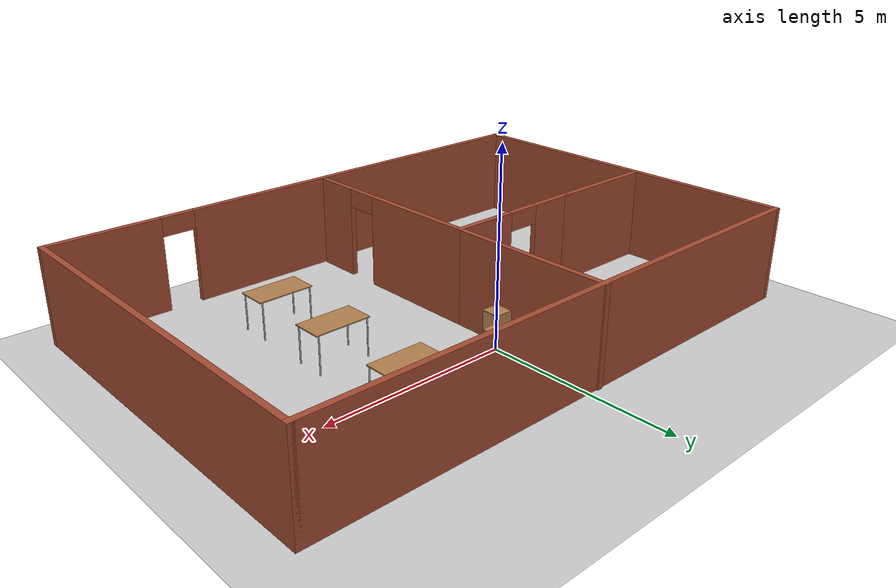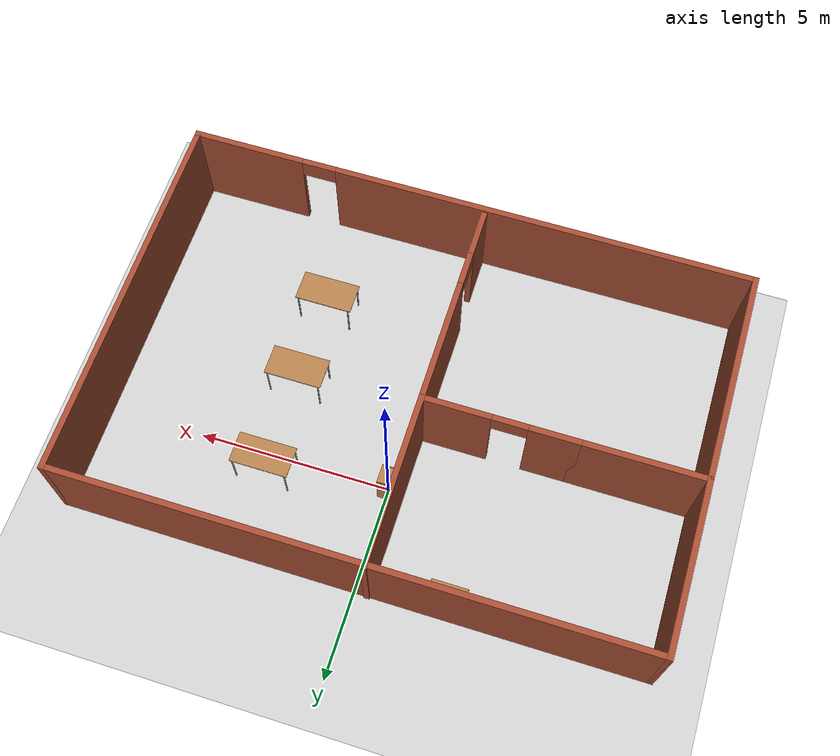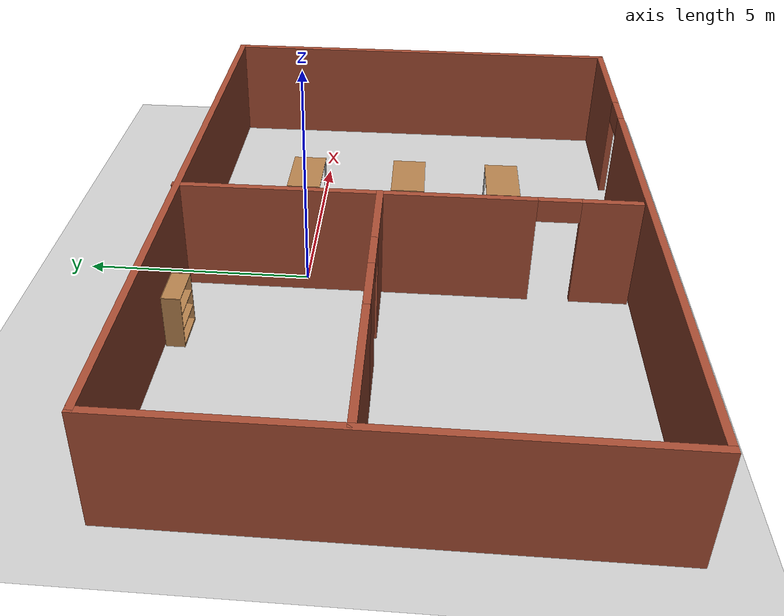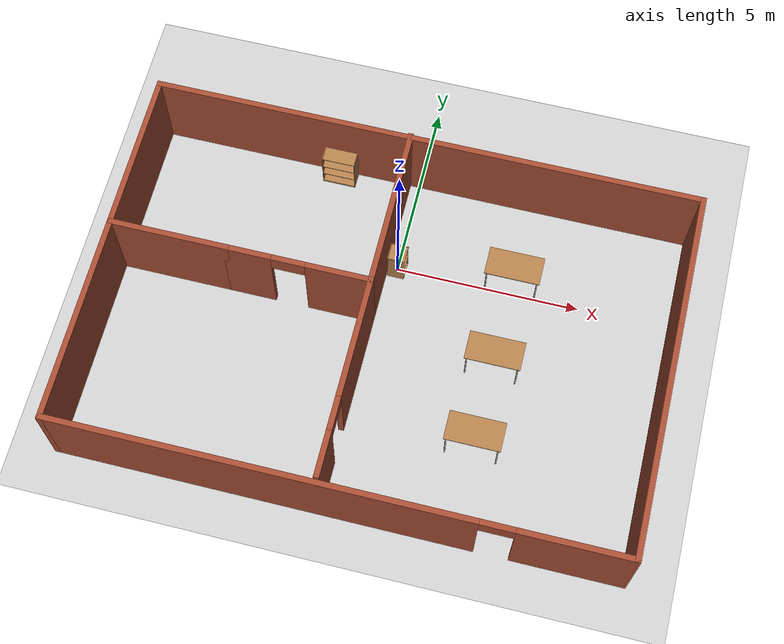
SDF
<sdf version="1.7">
 <world name="default">
  <plugin name="ruan_plugin" filename="libruan_plugin.so"/>
  <light name="sun" type="directional">
   <pose>0 0 10 0 -0 0</pose>
   <diffuse>0.8 0.8 0.8 1</diffuse>
   <specular>0.2 0.2 0.2 1</specular>
   <attenuation>
    <range>1000</range>
    <constant>0.9</constant>
    <linear>0.01</linear>
    <quadratic>0.001</quadratic>
   </attenuation>
   <direction>-0.5 0.1 -0.9</direction>
   <spot><inner_angle>0</inner_angle><outer_angle>0</outer_angle><falloff>0</falloff></spot>
  </light>
  <model name="ground_plane">
   <static>1</static>
   <link name="link">
    <collision name="collision">
     <geometry><plane><normal>0 0 1</normal><size>100 100</size></plane></geometry>
     <surface>
      <contact><collide_bitmask>65535</collide_bitmask></contact>
      <friction><ode><mu>100</mu><mu2>50</mu2></ode></friction>
     </surface>
    </collision>
    <visual name="visual">
     <cast_shadows>0</cast_shadows>
     <geometry><plane><normal>0 0 1</normal><size>100 100</size></plane></geometry>
     <material>
      <script><uri>file://media/materials/scripts/gazebo.material</uri><name>Gazebo/Grey</name></script>
     </material>
    </visual>
   </link>
  </model>
  <gravity>0 0 -9.8</gravity>
  <magnetic_field>6e-06 2.3e-05 -4.2e-05</magnetic_field>
  <atmosphere type="adiabatic"/>
  <physics type="ode">
   <max_step_size>0.001</max_step_size>
   <real_time_factor>1</real_time_factor>
   <real_time_update_rate>1000</real_time_update_rate>
  </physics>
  <scene><ambient>0.4 0.4 0.4 1</ambient><background>0.7 0.7 0.7 1</background><shadows>1</shadows></scene>
  <audio><device>default</device></audio>
  <spherical_coordinates>
   <surface_model>EARTH_WGS84</surface_model>
   <latitude_deg>0</latitude_deg>
   <longitude_deg>0</longitude_deg>
   <elevation>0</elevation>
   <heading_deg>0</heading_deg>
  </spherical_coordinates>
  <model name="cabinet">
   <static>1</static>
   <link name="cabinet_bottom_plate">
    <inertial>
     <pose>0 0 -1 0 -0 0</pose>
     <inertia><ixx>2.05</ixx><ixy>0</ixy><ixz>0</ixz><iyy>2.05</iyy><iyz>0</iyz><izz>2.05</izz></inertia>
     <mass>25</mass>
    </inertial>
    <collision name="cabinet_bottom_plate_geom">
     <pose>0 0 0.01 0 -0 0</pose>
     <geometry><box><size>0.45 0.45 0.02</size></box></geometry>
    </collision>
    <visual name="cabinet_bottom_plate_geom_visual">
     <pose>0 0 0.01 0 -0 0</pose>
     <geometry><box><size>0.45 0.45 0.02</size></box></geometry>
     <material>
      <script><uri>file://media/materials/scripts/gazebo.material</uri><name>Gazebo/Wood</name></script>
     </material>
    </visual>
    <collision name="cabinet_bottom_plate_geom_cabinet_back_plate">
     <pose>0.235 0 0.51 0 -0 0</pose>
     <geometry><box><size>0.02 0.45 1.02</size></box></geometry>
    </collision>
    <visual name="cabinet_bottom_plate_geom_cabinet_back_plate_visual">
     <pose>0.235 0 0.51 0 -0 0</pose>
     <geometry><box><size>0.02 0.45 1.02</size></box></geometry>
     <material>
      <script><uri>file://media/materials/scripts/gazebo.material</uri><name>Gazebo/Wood</name></script>
     </material>
    </visual>
    <collision name="cabinet_bottom_plate_geom_cabinet_left_plate">
     <pose>0 0.235 0.51 0 -0 0</pose>
     <geometry><box><size>0.45 0.02 1.02</size></box></geometry>
    </collision>
    <visual name="cabinet_bottom_plate_geom_cabinet_left_plate_visual">
     <pose>0 0.235 0.51 0 -0 0</pose>
     <geometry><box><size>0.45 0.02 1.02</size></box></geometry>
     <material>
      <script><uri>file://media/materials/scripts/gazebo.material</uri><name>Gazebo/Wood</name></script>
     </material>
    </visual>
    <collision name="cabinet_bottom_plate_geom_cabinet_middle_plate">
     <pose>0 0 0.51 0 -0 0</pose>
     <geometry><box><size>0.45 0.45 0.02</size></box></geometry>
    </collision>
    <visual name="cabinet_bottom_plate_geom_cabinet_middle_plate_visual">
     <pose>0 0 0.51 0 -0 0</pose>
     <geometry><box><size>0.45 0.45 0.02</size></box></geometry>
     <material>
      <script><uri>file://media/materials/scripts/gazebo.material</uri><name>Gazebo/Wood</name></script>
     </material>
    </visual>
    <collision name="cabinet_bottom_plate_geom_cabinet_right_plate">
     <pose>0 -0.235 0.51 0 -0 0</pose>
     <geometry><box><size>0.45 0.02 1.02</size></box></geometry>
    </collision>
    <visual name="cabinet_bottom_plate_geom_cabinet_right_plate_visual">
     <pose>0 -0.235 0.51 0 -0 0</pose>
     <geometry><box><size>0.45 0.02 1.02</size></box></geometry>
     <material>
      <script><uri>file://media/materials/scripts/gazebo.material</uri><name>Gazebo/Wood</name></script>
     </material>
    </visual>
    <collision name="cabinet_bottom_plate_geom_cabinet_top_plate">
     <pose>0 0 1.01 0 -0 0</pose>
     <geometry><box><size>0.45 0.45 0.02</size></box></geometry>
    </collision>
    <visual name="cabinet_bottom_plate_geom_cabinet_top_plate_visual">
     <pose>0 0 1.01 0 -0 0</pose>
     <geometry><box><size>0.45 0.45 0.02</size></box></geometry>
     <material>
      <script><uri>file://media/materials/scripts/gazebo.material</uri><name>Gazebo/Wood</name></script>
     </material>
    </visual>
   </link>
   <pose>0 0 0 0 -0 3.13547</pose>
  </model>
  <model name="bookshelf">
   <static>1</static>
   <link name="link">
    <inertial><mass>1</mass></inertial>
    <collision name="back">
     <pose>0 0.005 0.6 0 -0 0</pose>
     <geometry><box><size>0.9 0.01 1.2</size></box></geometry>
    </collision>
    <visual name="visual1">
     <pose>0 0.005 0.6 0 -0 0</pose>
     <geometry><box><size>0.9 0.01 1.2</size></box></geometry>
     <material>
      <script><uri>file://media/materials/scripts/gazebo.material</uri><name>Gazebo/Wood</name></script>
     </material>
    </visual>
    <collision name="left_side">
     <pose>0.45 -0.195 0.6 0 -0 0</pose>
     <geometry><box><size>0.02 0.4 1.2</size></box></geometry>
    </collision>
    <visual name="visual2">
     <pose>0.45 -0.195 0.6 0 -0 0</pose>
     <geometry><box><size>0.02 0.4 1.2</size></box></geometry>
     <material>
      <script><uri>file://media/materials/scripts/gazebo.material</uri><name>Gazebo/Wood</name></script>
     </material>
    </visual>
    <collision name="right_side">
     <pose>-0.45 -0.195 0.6 0 -0 0</pose>
     <geometry><box><size>0.02 0.4 1.2</size></box></geometry>
    </collision>
    <visual name="visual3">
     <pose>-0.45 -0.195 0.6 0 -0 0</pose>
     <geometry><box><size>0.02 0.4 1.2</size></box></geometry>
     <material>
      <script><uri>file://media/materials/scripts/gazebo.material</uri><name>Gazebo/Wood</name></script>
     </material>
    </visual>
    <collision name="bottom">
     <pose>0 -0.195 0.03 0 -0 0</pose>
     <geometry><box><size>0.88 0.4 0.06</size></box></geometry>
    </collision>
    <visual name="visual4">
     <pose>0 -0.195 0.03 0 -0 0</pose>
     <geometry><box><size>0.88 0.4 0.06</size></box></geometry>
     <material>
      <script><uri>file://media/materials/scripts/gazebo.material</uri><name>Gazebo/Wood</name></script>
     </material>
    </visual>
    <collision name="top">
     <pose>0 -0.195 1.19 0 -0 0</pose>
     <geometry><box><size>0.88 0.4 0.02</size></box></geometry>
    </collision>
    <visual name="visual5">
     <pose>0 -0.195 1.19 0 -0 0</pose>
     <geometry><box><size>0.88 0.4 0.02</size></box></geometry>
     <material>
      <script><uri>file://media/materials/scripts/gazebo.material</uri><name>Gazebo/Wood</name></script>
     </material>
    </visual>
    <collision name="low_shelf">
     <pose>0 -0.195 0.43 0 -0 0</pose>
     <geometry><box><size>0.88 0.4 0.02</size></box></geometry>
    </collision>
    <visual name="visual6">
     <pose>0 -0.195 0.43 0 -0 0</pose>
     <geometry><box><size>0.88 0.4 0.02</size></box></geometry>
     <material>
      <script><uri>file://media/materials/scripts/gazebo.material</uri><name>Gazebo/Wood</name></script>
     </material>
    </visual>
    <collision name="high_shelf">
     <pose>0 -0.195 0.8 0 -0 0</pose>
     <geometry><box><size>0.88 0.4 0.02</size></box></geometry>
    </collision>
    <visual name="visual7">
     <pose>0 -0.195 0.8 0 -0 0</pose>
     <geometry><box><size>0.88 0.4 0.02</size></box></geometry>
     <material>
      <script><uri>file://media/materials/scripts/gazebo.material</uri><name>Gazebo/Wood</name></script>
     </material>
    </visual>
   </link>
   <pose>-2.23226 2.59015 0 0 -0 0</pose>
  </model>
  <model name="Buinding_model2">
   <pose>0.10921 -2.2054 0 0 -0 0</pose>
   <link name="Wall_0">
    <collision name="Wall_0_Collision">
     <geometry><box><size>10 0.15 2.5</size></box></geometry>
     <pose>0 0 1.25 0 -0 0</pose>
    </collision>
    <visual name="Wall_0_Visual">
     <pose>0 0 1.25 0 -0 0</pose>
     <geometry><box><size>10 0.15 2.5</size></box></geometry>
     <material>
      <script><uri>file://media/materials/scripts/gazebo.material</uri><name>Gazebo/Bricks</name></script>
      <ambient>1 1 1 1</ambient>
     </material>
     <meta><layer>0</layer></meta>
    </visual>
    <pose>-7.425 -0.01921 0 0 -0 1.5708</pose>
   </link>
   <link name="Wall_1">
    <collision name="Wall_1_Collision">
     <geometry><box><size>15 0.15 2.5</size></box></geometry>
     <pose>0 0 1.25 0 -0 0</pose>
    </collision>
    <visual name="Wall_1_Visual">
     <pose>0 0 1.25 0 -0 0</pose>
     <geometry><box><size>15 0.15 2.5</size></box></geometry>
     <material>
      <script><uri>file://media/materials/scripts/gazebo.material</uri><name>Gazebo/Bricks</name></script>
      <ambient>1 1 1 1</ambient>
     </material>
     <meta><layer>0</layer></meta>
    </visual>
    <pose>0 4.90579 0 0 -0 0</pose>
   </link>
   <link name="Wall_2">
    <collision name="Wall_2_Collision">
     <geometry><box><size>10 0.15 2.5</size></box></geometry>
     <pose>0 0 1.25 0 -0 0</pose>
    </collision>
    <visual name="Wall_2_Visual">
     <pose>0 0 1.25 0 -0 0</pose>
     <geometry><box><size>10 0.15 2.5</size></box></geometry>
     <material>
      <script><uri>file://media/materials/scripts/gazebo.material</uri><name>Gazebo/Bricks</name></script>
      <ambient>1 1 1 1</ambient>
     </material>
     <meta><layer>0</layer></meta>
    </visual>
    <pose>7.425 -0.01921 0 0 -0 -1.5708</pose>
   </link>
   <link name="Wall_3">
    <pose>0 -4.94421 0 0 -0 3.14159</pose>
    <visual name="Wall_3_Visual_0">
     <pose>-6.00037 0 1.25 0 -0 0</pose>
     <geometry><box><size>2.99925 0.15 2.5</size></box></geometry>
     <material>
      <script><uri>file://media/materials/scripts/gazebo.material</uri><name>Gazebo/Bricks</name></script>
      <ambient>1 1 1 1</ambient>
     </material>
     <meta><layer>0</layer></meta>
    </visual>
    <collision name="Wall_3_Collision_0">
     <geometry><box><size>2.99925 0.15 2.5</size></box></geometry>
     <pose>-6.00037 0 1.25 0 -0 0</pose>
    </collision>
    <visual name="Wall_3_Visual_1">
     <pose>1.94963 0 1.25 0 -0 0</pose>
     <geometry><box><size>11.1007 0.15 2.5</size></box></geometry>
     <material>
      <script><uri>file://media/materials/scripts/gazebo.material</uri><name>Gazebo/Bricks</name></script>
      <ambient>1 1 1 1</ambient>
     </material>
     <meta><layer>0</layer></meta>
    </visual>
    <collision name="Wall_3_Collision_1">
     <geometry><box><size>11.1007 0.15 2.5</size></box></geometry>
     <pose>1.94963 0 1.25 0 -0 0</pose>
    </collision>
    <visual name="Wall_3_Visual_2">
     <pose>-4.05075 0 2.25 0 -0 0</pose>
     <geometry><box><size>0.9 0.15 0.5</size></box></geometry>
     <material>
      <script><uri>file://media/materials/scripts/gazebo.material</uri><name>Gazebo/Bricks</name></script>
      <ambient>1 1 1 1</ambient>
     </material>
     <meta><layer>0</layer></meta>
    </visual>
    <collision name="Wall_3_Collision_2">
     <geometry><box><size>0.9 0.15 0.5</size></box></geometry>
     <pose>-4.05075 0 2.25 0 -0 0</pose>
    </collision>
   </link>
   <link name="Wall_5">
    <collision name="Wall_5_Collision">
     <geometry><box><size>3.25 0.15 2.5</size></box></geometry>
     <pose>0 0 1.25 0 -0 0</pose>
    </collision>
    <visual name="Wall_5_Visual">
     <pose>0 0 1.25 0 -0 0</pose>
     <geometry><box><size>3.25 0.15 2.5</size></box></geometry>
     <material>
      <script><uri>file://media/materials/scripts/gazebo.material</uri><name>Gazebo/Bricks</name></script>
      <ambient>1 1 1 1</ambient>
     </material>
     <meta><layer>0</layer></meta>
    </visual>
    <pose>-5.84879 0.59421 0 0 -0 0</pose>
   </link>
   <link name="Wall_6">
    <pose>-2.37379 0.59421 0 0 -0 0</pose>
    <visual name="Wall_6_Visual_0">
     <pose>-1.35664 0 1.25 0 -0 0</pose>
     <geometry><box><size>1.28672 0.15 2.5</size></box></geometry>
     <material>
      <script><uri>file://media/materials/scripts/gazebo.material</uri><name>Gazebo/Bricks</name></script>
      <ambient>1 1 1 1</ambient>
     </material>
     <meta><layer>0</layer></meta>
    </visual>
    <collision name="Wall_6_Collision_0">
     <geometry><box><size>1.28672 0.15 2.5</size></box></geometry>
     <pose>-1.35664 0 1.25 0 -0 0</pose>
    </collision>
    <visual name="Wall_6_Visual_1">
     <pose>1.09336 0 1.25 0 -0 0</pose>
     <geometry><box><size>1.81328 0.15 2.5</size></box></geometry>
     <material>
      <script><uri>file://media/materials/scripts/gazebo.material</uri><name>Gazebo/Bricks</name></script>
      <ambient>1 1 1 1</ambient>
     </material>
     <meta><layer>0</layer></meta>
    </visual>
    <collision name="Wall_6_Collision_1">
     <geometry><box><size>1.81328 0.15 2.5</size></box></geometry>
     <pose>1.09336 0 1.25 0 -0 0</pose>
    </collision>
    <visual name="Wall_6_Visual_2">
     <pose>-0.263277 0 2.25 0 -0 0</pose>
     <geometry><box><size>0.9 0.15 0.5</size></box></geometry>
     <material>
      <script><uri>file://media/materials/scripts/gazebo.material</uri><name>Gazebo/Bricks</name></script>
      <ambient>1 1 1 1</ambient>
     </material>
     <meta><layer>0</layer></meta>
    </visual>
    <collision name="Wall_6_Collision_2">
     <geometry><box><size>0.9 0.15 0.5</size></box></geometry>
     <pose>-0.263277 0 2.25 0 -0 0</pose>
    </collision>
   </link>
   <link name="Wall_7">
    <collision name="Wall_7_Collision">
     <geometry><box><size>4.5 0.15 2.5</size></box></geometry>
     <pose>0 0 1.25 0 -0 0</pose>
    </collision>
    <visual name="Wall_7_Visual">
     <pose>0 0 1.25 0 -0 0</pose>
     <geometry><box><size>4.5 0.15 2.5</size></box></geometry>
     <material>
      <script><uri>file://media/materials/scripts/gazebo.material</uri><name>Gazebo/Bricks</name></script>
      <ambient>1 1 1 1</ambient>
     </material>
     <meta><layer>0</layer></meta>
    </visual>
    <pose>-0.44879 2.76921 0 0 -0 1.5708</pose>
   </link>
   <link name="Wall_9">
    <pose>-0.44879 -2.08079 0 0 -0 -1.5708</pose>
    <visual name="Wall_9_Visual_0">
     <pose>-1.07829 0 1.25 0 -0 0</pose>
     <geometry><box><size>3.34342 0.15 2.5</size></box></geometry>
     <material>
      <script><uri>file://media/materials/scripts/gazebo.material</uri><name>Gazebo/Bricks</name></script>
      <ambient>1 1 1 1</ambient>
     </material>
     <meta><layer>0</layer></meta>
    </visual>
    <collision name="Wall_9_Collision_0">
     <geometry><box><size>3.34342 0.15 2.5</size></box></geometry>
     <pose>-1.07829 0 1.25 0 -0 0</pose>
    </collision>
    <visual name="Wall_9_Visual_1">
     <pose>2.12171 0 1.25 0 -0 0</pose>
     <geometry><box><size>1.25658 0.15 2.5</size></box></geometry>
     <material>
      <script><uri>file://media/materials/scripts/gazebo.material</uri><name>Gazebo/Bricks</name></script>
      <ambient>1 1 1 1</ambient>
     </material>
     <meta><layer>0</layer></meta>
    </visual>
    <collision name="Wall_9_Collision_1">
     <geometry><box><size>1.25658 0.15 2.5</size></box></geometry>
     <pose>2.12171 0 1.25 0 -0 0</pose>
    </collision>
    <visual name="Wall_9_Visual_2">
     <pose>1.04342 0 2.25 0 -0 0</pose>
     <geometry><box><size>0.9 0.15 0.5</size></box></geometry>
     <material>
      <script><uri>file://media/materials/scripts/gazebo.material</uri><name>Gazebo/Bricks</name></script>
      <ambient>1 1 1 1</ambient>
     </material>
     <meta><layer>0</layer></meta>
    </visual>
    <collision name="Wall_9_Collision_2">
     <geometry><box><size>0.9 0.15 0.5</size></box></geometry>
     <pose>1.04342 0 2.25 0 -0 0</pose>
    </collision>
   </link>
   <static>1</static>
  </model>
  <model name="table">
   <static>1</static>
   <link name="link">
    <collision name="surface">
     <pose>0 0 1 0 -0 0</pose>
     <geometry><box><size>1.5 0.8 0.03</size></box></geometry>
     <surface><friction><ode><mu>0.6</mu><mu2>0.6</mu2></ode></friction></surface>
    </collision>
    <visual name="visual1">
     <pose>0 0 1 0 -0 0</pose>
     <geometry><box><size>1.5 0.8 0.03</size></box></geometry>
     <material>
      <script><uri>file://media/materials/scripts/gazebo.material</uri><name>Gazebo/Wood</name></script>
     </material>
    </visual>
    <collision name="front_left_leg">
     <pose>0.68 0.38 0.5 0 -0 0</pose>
     <geometry><cylinder><radius>0.02</radius><length>1</length></cylinder></geometry>
    </collision>
    <visual name="front_left_leg">
     <pose>0.68 0.38 0.5 0 -0 0</pose>
     <geometry><cylinder><radius>0.02</radius><length>1</length></cylinder></geometry>
     <material>
      <script><uri>file://media/materials/scripts/gazebo.material</uri><name>Gazebo/Grey</name></script>
     </material>
    </visual>
    <collision name="front_right_leg">
     <pose>0.68 -0.38 0.5 0 -0 0</pose>
     <geometry><cylinder><radius>0.02</radius><length>1</length></cylinder></geometry>
    </collision>
    <visual name="front_right_leg">
     <pose>0.68 -0.38 0.5 0 -0 0</pose>
     <geometry><cylinder><radius>0.02</radius><length>1</length></cylinder></geometry>
     <material>
      <script><uri>file://media/materials/scripts/gazebo.material</uri><name>Gazebo/Grey</name></script>
     </material>
    </visual>
    <collision name="back_right_leg">
     <pose>-0.68 -0.38 0.5 0 -0 0</pose>
     <geometry><cylinder><radius>0.02</radius><length>1</length></cylinder></geometry>
    </collision>
    <visual name="back_right_leg">
     <pose>-0.68 -0.38 0.5 0 -0 0</pose>
     <geometry><cylinder><radius>0.02</radius><length>1</length></cylinder></geometry>
     <material>
      <script><uri>file://media/materials/scripts/gazebo.material</uri><name>Gazebo/Grey</name></script>
     </material>
    </visual>
    <collision name="back_left_leg">
     <pose>-0.68 0.38 0.5 0 -0 0</pose>
     <geometry><cylinder><radius>0.02</radius><length>1</length></cylinder></geometry>
    </collision>
    <visual name="back_left_leg">
     <pose>-0.68 0.38 0.5 0 -0 0</pose>
     <geometry><cylinder><radius>0.02</radius><length>1</length></cylinder></geometry>
     <material>
      <script><uri>file://media/materials/scripts/gazebo.material</uri><name>Gazebo/Grey</name></script>
     </material>
    </visual>
   </link>
   <pose>3.10949 0.382591 0 0 -0 0</pose>
  </model>
  <model name="table_clone">
   <static>1</static>
   <link name="link">
    <collision name="surface">
     <pose>0 0 1 0 -0 0</pose>
     <geometry><box><size>1.5 0.8 0.03</size></box></geometry>
     <surface><friction><ode><mu>0.6</mu><mu2>0.6</mu2></ode></friction></surface>
    </collision>
    <visual name="visual1">
     <pose>0 0 1 0 -0 0</pose>
     <geometry><box><size>1.5 0.8 0.03</size></box></geometry>
     <material>
      <script><uri>file://media/materials/scripts/gazebo.material</uri><name>Gazebo/Wood</name></script>
     </material>
    </visual>
    <collision name="front_left_leg">
     <pose>0.68 0.38 0.5 0 -0 0</pose>
     <geometry><cylinder><radius>0.02</radius><length>1</length></cylinder></geometry>
    </collision>
    <visual name="front_left_leg">
     <pose>0.68 0.38 0.5 0 -0 0</pose>
     <geometry><cylinder><radius>0.02</radius><length>1</length></cylinder></geometry>
     <material>
      <script><uri>file://media/materials/scripts/gazebo.material</uri><name>Gazebo/Grey</name></script>
     </material>
    </visual>
    <collision name="front_right_leg">
     <pose>0.68 -0.38 0.5 0 -0 0</pose>
     <geometry><cylinder><radius>0.02</radius><length>1</length></cylinder></geometry>
    </collision>
    <visual name="front_right_leg">
     <pose>0.68 -0.38 0.5 0 -0 0</pose>
     <geometry><cylinder><radius>0.02</radius><length>1</length></cylinder></geometry>
     <material>
      <script><uri>file://media/materials/scripts/gazebo.material</uri><name>Gazebo/Grey</name></script>
     </material>
    </visual>
    <collision name="back_right_leg">
     <pose>-0.68 -0.38 0.5 0 -0 0</pose>
     <geometry><cylinder><radius>0.02</radius><length>1</length></cylinder></geometry>
    </collision>
    <visual name="back_right_leg">
     <pose>-0.68 -0.38 0.5 0 -0 0</pose>
     <geometry><cylinder><radius>0.02</radius><length>1</length></cylinder></geometry>
     <material>
      <script><uri>file://media/materials/scripts/gazebo.material</uri><name>Gazebo/Grey</name></script>
     </material>
    </visual>
    <collision name="back_left_leg">
     <pose>-0.68 0.38 0.5 0 -0 0</pose>
     <geometry><cylinder><radius>0.02</radius><length>1</length></cylinder></geometry>
    </collision>
    <visual name="back_left_leg">
     <pose>-0.68 0.38 0.5 0 -0 0</pose>
     <geometry><cylinder><radius>0.02</radius><length>1</length></cylinder></geometry>
     <material>
      <script><uri>file://media/materials/scripts/gazebo.material</uri><name>Gazebo/Grey</name></script>
     </material>
    </visual>
   </link>
   <pose>3.11788 -2.13506 0 0 -0 0</pose>
  </model>
  <model name="table_clone_0">
   <static>1</static>
   <link name="link">
    <collision name="surface">
     <pose>0 0 1 0 -0 0</pose>
     <geometry><box><size>1.5 0.8 0.03</size></box></geometry>
     <surface><friction><ode><mu>0.6</mu><mu2>0.6</mu2></ode></friction></surface>
    </collision>
    <visual name="visual1">
     <pose>0 0 1 0 -0 0</pose>
     <geometry><box><size>1.5 0.8 0.03</size></box></geometry>
     <material>
      <script><uri>file://media/materials/scripts/gazebo.material</uri><name>Gazebo/Wood</name></script>
     </material>
    </visual>
    <collision name="front_left_leg">
     <pose>0.68 0.38 0.5 0 -0 0</pose>
     <geometry><cylinder><radius>0.02</radius><length>1</length></cylinder></geometry>
    </collision>
    <visual name="front_left_leg">
     <pose>0.68 0.38 0.5 0 -0 0</pose>
     <geometry><cylinder><radius>0.02</radius><length>1</length></cylinder></geometry>
     <material>
      <script><uri>file://media/materials/scripts/gazebo.material</uri><name>Gazebo/Grey</name></script>
     </material>
    </visual>
    <collision name="front_right_leg">
     <pose>0.68 -0.38 0.5 0 -0 0</pose>
     <geometry><cylinder><radius>0.02</radius><length>1</length></cylinder></geometry>
    </collision>
    <visual name="front_right_leg">
     <pose>0.68 -0.38 0.5 0 -0 0</pose>
     <geometry><cylinder><radius>0.02</radius><length>1</length></cylinder></geometry>
     <material>
      <script><uri>file://media/materials/scripts/gazebo.material</uri><name>Gazebo/Grey</name></script>
     </material>
    </visual>
    <collision name="back_right_leg">
     <pose>-0.68 -0.38 0.5 0 -0 0</pose>
     <geometry><cylinder><radius>0.02</radius><length>1</length></cylinder></geometry>
    </collision>
    <visual name="back_right_leg">
     <pose>-0.68 -0.38 0.5 0 -0 0</pose>
     <geometry><cylinder><radius>0.02</radius><length>1</length></cylinder></geometry>
     <material>
      <script><uri>file://media/materials/scripts/gazebo.material</uri><name>Gazebo/Grey</name></script>
     </material>
    </visual>
    <collision name="back_left_leg">
     <pose>-0.68 0.38 0.5 0 -0 0</pose>
     <geometry><cylinder><radius>0.02</radius><length>1</length></cylinder></geometry>
    </collision>
    <visual name="back_left_leg">
     <pose>-0.68 0.38 0.5 0 -0 0</pose>
     <geometry><cylinder><radius>0.02</radius><length>1</length></cylinder></geometry>
     <material>
      <script><uri>file://media/materials/scripts/gazebo.material</uri><name>Gazebo/Grey</name></script>
     </material>
    </visual>
   </link>
   <pose>3.0904 -4.42237 0 0 -0 0</pose>
  </model>
 </world>
</sdf>
